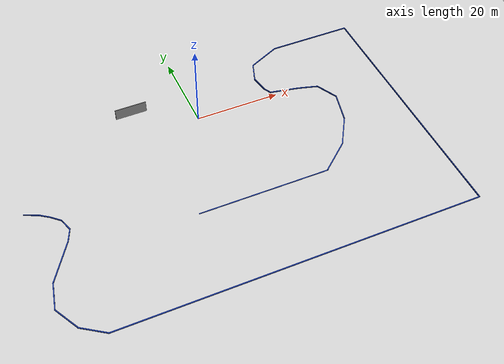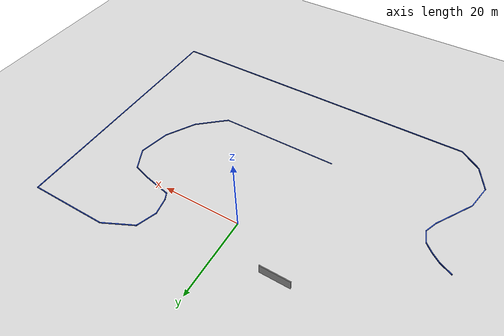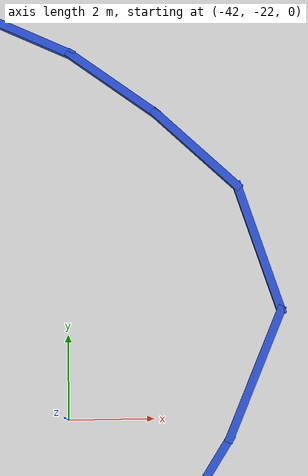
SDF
<sdf version="1.4">
 <world name="default">
  <light name="sun" type="directional">
   <pose>0 0 10 0 -0 0</pose>
   <diffuse>0.8 0.8 0.8 1</diffuse>
   <specular>0.2 0.2 0.2 1</specular>
   <attenuation>
    <range>1000</range>
    <constant>0.9</constant>
    <linear>0.01</linear>
    <quadratic>0.001</quadratic>
   </attenuation>
   <direction>-0.5 0.1 -0.9</direction>
  </light>
  <model name="ground_plane">
   <static>1</static>
   <link name="link">
    <collision name="collision">
     <geometry><plane><normal>0 0 1</normal><size>100 100</size></plane></geometry>
     <surface><friction><ode><mu>100</mu><mu2>50</mu2></ode></friction></surface>
    </collision>
    <visual name="visual">
     <cast_shadows>0</cast_shadows>
     <geometry><plane><normal>0 0 1</normal><size>100 100</size></plane></geometry>
     <material>
      <script><uri>file://media/materials/scripts/gazebo.material</uri><name>Gazebo/Grey</name></script>
     </material>
    </visual>
    <velocity_decay><linear>0</linear><angular>0</angular></velocity_decay>
   </link>
  </model>
  <physics type="ode">
   <max_step_size>0.001</max_step_size>
   <real_time_factor>1</real_time_factor>
   <real_time_update_rate>1000</real_time_update_rate>
   <gravity>0 0 -9.8</gravity>
  </physics>
  <scene><ambient>0.4 0.4 0.4 1</ambient><background>0.7 0.7 0.7 1</background><shadows>1</shadows></scene>
  <model name="grey_wall">
   <static>1</static>
   <link name="link">
    <pose>0 0 1.4 0 -0 0</pose>
    <collision name="collision"><geometry><box><size>7.5 0.2 2.8</size></box></geometry></collision>
    <visual name="visual">
     <cast_shadows>0</cast_shadows>
     <geometry><box><size>7.5 0.2 2.8</size></box></geometry>
     <material>
      <script>
       <uri>model://grey_wall/materials/scripts</uri>
       <uri>model://grey_wall/materials/textures</uri>
       <name>vrc/grey_wall</name>
      </script>
     </material>
    </visual>
    <velocity_decay><linear>0</linear><angular>0</angular></velocity_decay>
   </link>
   <pose>-13.9123 7.71769 0 0 -0 0</pose>
  </model>
  <spherical_coordinates>
   <surface_model>EARTH_WGS84</surface_model>
   <latitude_deg>0</latitude_deg>
   <longitude_deg>0</longitude_deg>
   <elevation>0</elevation>
   <heading_deg>0</heading_deg>
  </spherical_coordinates>
  <model name="BuildingDefaultName">
   <static>1</static>
   <link name="__default__"><velocity_decay><linear>0</linear><angular>0</angular></velocity_decay></link>
  </model>
  <model name="Line">
   <pose>2.51015 -18.6664 0 0 -0 0</pose>
   <link name="Wall_14">
    <collision name="Wall_14_Collision">
     <geometry><box><size>30.9738 0.2 0.1</size></box></geometry>
     <pose>0 0 0.05 0 -0 0</pose>
    </collision>
    <visual name="Wall_14_Visual">
     <pose>0 0 0.05 0 -0 0</pose>
     <geometry><box><size>30.9738 0.2 0.1</size></box></geometry>
     <material>
      <script><uri>file://media/materials/scripts/gazebo.material</uri><name>Gazebo/Blue</name></script>
     </material>
    </visual>
    <velocity_decay><linear>0</linear><angular>0</angular></velocity_decay>
    <pose>2.35 -8.066 0 0 -0 0</pose>
   </link>
   <link name="Wall_16">
    <collision name="Wall_16_Collision">
     <geometry><box><size>9.05237 0.2 0.2</size></box></geometry>
     <pose>0 0 0.1 0 -0 0</pose>
    </collision>
    <visual name="Wall_16_Visual">
     <pose>0 0 0.1 0 -0 0</pose>
     <geometry><box><size>9.05237 0.2 0.2</size></box></geometry>
     <material>
      <script><uri>file://media/materials/scripts/gazebo.material</uri><name>Gazebo/Blue</name></script>
     </material>
    </visual>
    <velocity_decay><linear>0</linear><angular>0</angular></velocity_decay>
    <pose>21.074 -5.1125 0 0 -0 0.707119</pose>
   </link>
   <link name="Wall_17">
    <collision name="Wall_17_Collision">
     <geometry><box><size>8.40503 0.2 0.2</size></box></geometry>
     <pose>0 0 0.1 0 -0 0</pose>
    </collision>
    <visual name="Wall_17_Visual">
     <pose>0 0 0.1 0 -0 0</pose>
     <geometry><box><size>8.40503 0.2 0.2</size></box></geometry>
     <material>
      <script><uri>file://media/materials/scripts/gazebo.material</uri><name>Gazebo/Blue</name></script>
     </material>
    </visual>
    <velocity_decay><linear>0</linear><angular>0</angular></velocity_decay>
    <pose>26.5495 1.281 0 0 -0 1.03043</pose>
   </link>
   <link name="Wall_18">
    <collision name="Wall_18_Collision">
     <geometry><box><size>7.85807 0.2 0.2</size></box></geometry>
     <pose>0 0 0.1 0 -0 0</pose>
    </collision>
    <visual name="Wall_18_Visual">
     <pose>0 0 0.1 0 -0 0</pose>
     <geometry><box><size>7.85807 0.2 0.2</size></box></geometry>
     <material>
      <script><uri>file://media/materials/scripts/gazebo.material</uri><name>Gazebo/Blue</name></script>
     </material>
    </visual>
    <velocity_decay><linear>0</linear><angular>0</angular></velocity_decay>
    <pose>29.5166 8.53101 0 0 -0 1.34519</pose>
   </link>
   <link name="Wall_19">
    <collision name="Wall_19_Collision">
     <geometry><box><size>5.7543 0.2 0.2</size></box></geometry>
     <pose>0 0 0.1 0 -0 0</pose>
    </collision>
    <visual name="Wall_19_Visual">
     <pose>0 0 0.1 0 -0 0</pose>
     <geometry><box><size>5.7543 0.2 0.2</size></box></geometry>
     <material>
      <script><uri>file://media/materials/scripts/gazebo.material</uri><name>Gazebo/Blue</name></script>
     </material>
    </visual>
    <velocity_decay><linear>0</linear><angular>0</angular></velocity_decay>
    <pose>29.1189 14.7408 0 0 -0 2.03937</pose>
   </link>
   <link name="Wall_20">
    <collision name="Wall_20_Collision">
     <geometry><box><size>4.8247 0.2 0.2</size></box></geometry>
     <pose>0 0 0.1 0 -0 0</pose>
    </collision>
    <visual name="Wall_20_Visual">
     <pose>0 0 0.1 0 -0 0</pose>
     <geometry><box><size>4.8247 0.2 0.2</size></box></geometry>
     <material>
      <script><uri>file://media/materials/scripts/gazebo.material</uri><name>Gazebo/Blue</name></script>
     </material>
    </visual>
    <velocity_decay><linear>0</linear><angular>0</angular></velocity_decay>
    <pose>25.6449 17.8661 0 0 -0 2.85781</pose>
   </link>
   <link name="Wall_21">
    <collision name="Wall_21_Collision">
     <geometry><box><size>7.17792 0.2 0.2</size></box></geometry>
     <pose>0 0 0.1 0 -0 0</pose>
    </collision>
    <visual name="Wall_21_Visual">
     <pose>0 0 0.1 0 -0 0</pose>
     <geometry><box><size>7.17792 0.2 0.2</size></box></geometry>
     <material>
      <script><uri>file://media/materials/scripts/gazebo.material</uri><name>Gazebo/Blue</name></script>
     </material>
    </visual>
    <velocity_decay><linear>0</linear><angular>0</angular></velocity_decay>
    <pose>20.0094 19.2251 0 0 -0 2.9362</pose>
   </link>
   <link name="Wall_22">
    <collision name="Wall_22_Collision">
     <geometry><box><size>2.10939 0.2 0.2</size></box></geometry>
     <pose>0 0 0.1 0 -0 0</pose>
    </collision>
    <visual name="Wall_22_Visual">
     <pose>0 0 0.1 0 -0 0</pose>
     <geometry><box><size>2.10939 0.2 0.2</size></box></geometry>
     <material>
      <script><uri>file://media/materials/scripts/gazebo.material</uri><name>Gazebo/Blue</name></script>
     </material>
    </visual>
    <velocity_decay><linear>0</linear><angular>0</angular></velocity_decay>
    <pose>16.1668 20.7906 0 0 -0 2.03444</pose>
   </link>
   <link name="Wall_23">
    <collision name="Wall_23_Collision">
     <geometry><box><size>4.27227 0.2 0.2</size></box></geometry>
     <pose>0 0 0.1 0 -0 0</pose>
    </collision>
    <visual name="Wall_23_Visual">
     <pose>0 0 0.1 0 -0 0</pose>
     <geometry><box><size>4.27227 0.2 0.2</size></box></geometry>
     <material>
      <script><uri>file://media/materials/scripts/gazebo.material</uri><name>Gazebo/Blue</name></script>
     </material>
    </visual>
    <velocity_decay><linear>0</linear><angular>0</angular></velocity_decay>
    <pose>15.3807 23.6487 0 0 -0 1.7481</pose>
   </link>
   <link name="Wall_24">
    <collision name="Wall_24_Collision">
     <geometry><box><size>5.31054 0.2 0.2</size></box></geometry>
     <pose>0 0 0.1 0 -0 0</pose>
    </collision>
    <visual name="Wall_24_Visual">
     <pose>0 0 0.1 0 -0 0</pose>
     <geometry><box><size>5.31054 0.2 0.2</size></box></geometry>
     <material>
      <script><uri>file://media/materials/scripts/gazebo.material</uri><name>Gazebo/Blue</name></script>
     </material>
    </visual>
    <velocity_decay><linear>0</linear><angular>0</angular></velocity_decay>
    <pose>15.8776 28.0605 0 0 -0 1.22918</pose>
   </link>
   <link name="Wall_25">
    <collision name="Wall_25_Collision">
     <geometry><box><size>8.55945 0.2 0.2</size></box></geometry>
     <pose>0 0 0.1 0 -0 0</pose>
    </collision>
    <visual name="Wall_25_Visual">
     <pose>0 0 0.1 0 -0 0</pose>
     <geometry><box><size>8.55945 0.2 0.2</size></box></geometry>
     <material>
      <script><uri>file://media/materials/scripts/gazebo.material</uri><name>Gazebo/Blue</name></script>
     </material>
    </visual>
    <velocity_decay><linear>0</linear><angular>0</angular></velocity_decay>
    <pose>20.5118 32.2558 0 0 -0 0.441939</pose>
   </link>
   <link name="Wall_26">
    <collision name="Wall_26_Collision">
     <geometry><box><size>20.0382 0.2 0.2</size></box></geometry>
     <pose>0 0 0.1 0 -0 0</pose>
    </collision>
    <visual name="Wall_26_Visual">
     <pose>0 0 0.1 0 -0 0</pose>
     <geometry><box><size>20.0382 0.2 0.2</size></box></geometry>
     <material>
      <script><uri>file://media/materials/scripts/gazebo.material</uri><name>Gazebo/Blue</name></script>
     </material>
    </visual>
    <velocity_decay><linear>0</linear><angular>0</angular></velocity_decay>
    <pose>34.2091 34.0434 0 0 -0 0</pose>
   </link>
   <link name="Wall_27">
    <collision name="Wall_27_Collision">
     <geometry><box><size>62.7089 0.2 0.2</size></box></geometry>
     <pose>0 0 0.1 0 -0 0</pose>
    </collision>
    <visual name="Wall_27_Visual">
     <pose>0 0 0.1 0 -0 0</pose>
     <geometry><box><size>62.7089 0.2 0.2</size></box></geometry>
     <material>
      <script><uri>file://media/materials/scripts/gazebo.material</uri><name>Gazebo/Blue</name></script>
     </material>
    </visual>
    <velocity_decay><linear>0</linear><angular>0</angular></velocity_decay>
    <pose>44.1281 2.78896 0 0 0 -1.5708</pose>
   </link>
   <link name="Wall_28">
    <collision name="Wall_28_Collision">
     <geometry><box><size>84.2314 0.2 0.2</size></box></geometry>
     <pose>0 0 0.1 0 -0 0</pose>
    </collision>
    <visual name="Wall_28_Visual">
     <pose>0 0 0.1 0 -0 0</pose>
     <geometry><box><size>84.2314 0.2 0.2</size></box></geometry>
     <material>
      <script><uri>file://media/materials/scripts/gazebo.material</uri><name>Gazebo/Blue</name></script>
     </material>
    </visual>
    <velocity_decay><linear>0</linear><angular>0</angular></velocity_decay>
    <pose>2.11242 -28.4655 0 0 -0 3.14159</pose>
   </link>
   <link name="Wall_29">
    <collision name="Wall_29_Collision">
     <geometry><box><size>6.37887 0.2 0.2</size></box></geometry>
     <pose>0 0 0.1 0 -0 0</pose>
    </collision>
    <visual name="Wall_29_Visual">
     <pose>0 0 0.1 0 -0 0</pose>
     <geometry><box><size>6.37887 0.2 0.2</size></box></geometry>
     <material>
      <script><uri>file://media/materials/scripts/gazebo.material</uri><name>Gazebo/Blue</name></script>
     </material>
    </visual>
    <velocity_decay><linear>0</linear><angular>0</angular></velocity_decay>
    <pose>-42.4299 -26.6875 0 0 -0 2.52839</pose>
   </link>
   <link name="Wall_30">
    <collision name="Wall_30_Collision">
     <geometry><box><size>6.72891 0.2 0.2</size></box></geometry>
     <pose>0 0 0.1 0 -0 0</pose>
    </collision>
    <visual name="Wall_30_Visual">
     <pose>0 0 0.1 0 -0 0</pose>
     <geometry><box><size>6.72891 0.2 0.2</size></box></geometry>
     <material>
      <script><uri>file://media/materials/scripts/gazebo.material</uri><name>Gazebo/Blue</name></script>
     </material>
    </visual>
    <velocity_decay><linear>0</linear><angular>0</angular></velocity_decay>
    <pose>-46.4536 -22.0087 0 0 -0 2.04726</pose>
   </link>
   <link name="Wall_31">
    <collision name="Wall_31_Collision">
     <geometry><box><size>6.64626 0.2 0.2</size></box></geometry>
     <pose>0 0 0.1 0 -0 0</pose>
    </collision>
    <visual name="Wall_31_Visual">
     <pose>0 0 0.1 0 -0 0</pose>
     <geometry><box><size>6.64626 0.2 0.2</size></box></geometry>
     <material>
      <script><uri>file://media/materials/scripts/gazebo.material</uri><name>Gazebo/Blue</name></script>
     </material>
    </visual>
    <velocity_decay><linear>0</linear><angular>0</angular></velocity_decay>
    <pose>-47.2387 -15.9644 0 0 -0 1.34801</pose>
   </link>
   <link name="Wall_32">
    <collision name="Wall_32_Collision">
     <geometry><box><size>10.8855 0.2 0.2</size></box></geometry>
     <pose>0 0 0.1 0 -0 0</pose>
    </collision>
    <visual name="Wall_32_Visual">
     <pose>0 0 0.1 0 -0 0</pose>
     <geometry><box><size>10.8855 0.2 0.2</size></box></geometry>
     <material>
      <script><uri>file://media/materials/scripts/gazebo.material</uri><name>Gazebo/Blue</name></script>
     </material>
    </visual>
    <velocity_decay><linear>0</linear><angular>0</angular></velocity_decay>
    <pose>-43.6374 -8.32672 0 0 -0 0.999459</pose>
   </link>
   <link name="Wall_33">
    <collision name="Wall_33_Collision">
     <geometry><box><size>3.4597 0.2 0.2</size></box></geometry>
     <pose>0 0 0.1 0 -0 0</pose>
    </collision>
    <visual name="Wall_33_Visual">
     <pose>0 0 0.1 0 -0 0</pose>
     <geometry><box><size>3.4597 0.2 0.2</size></box></geometry>
     <material>
      <script><uri>file://media/materials/scripts/gazebo.material</uri><name>Gazebo/Blue</name></script>
     </material>
    </visual>
    <velocity_decay><linear>0</linear><angular>0</angular></velocity_decay>
    <pose>-40.1063 -2.33444 0 0 -0 1.1659</pose>
   </link>
   <link name="Wall_34">
    <collision name="Wall_34_Collision">
     <geometry><box><size>3.34711 0.2 0.2</size></box></geometry>
     <pose>0 0 0.1 0 -0 0</pose>
    </collision>
    <visual name="Wall_34_Visual">
     <pose>0 0 0.1 0 -0 0</pose>
     <geometry><box><size>3.34711 0.2 0.2</size></box></geometry>
     <material>
      <script><uri>file://media/materials/scripts/gazebo.material</uri><name>Gazebo/Blue</name></script>
     </material>
    </visual>
    <velocity_decay><linear>0</linear><angular>0</angular></velocity_decay>
    <pose>-39.9458 0.661698 0 0 -0 1.8818</pose>
   </link>
   <link name="Wall_35">
    <collision name="Wall_35_Collision">
     <geometry><box><size>2.84932 0.2 0.2</size></box></geometry>
     <pose>0 0 0.1 0 -0 0</pose>
    </collision>
    <visual name="Wall_35_Visual">
     <pose>0 0 0.1 0 -0 0</pose>
     <geometry><box><size>2.84932 0.2 0.2</size></box></geometry>
     <material>
      <script><uri>file://media/materials/scripts/gazebo.material</uri><name>Gazebo/Blue</name></script>
     </material>
    </visual>
    <velocity_decay><linear>0</linear><angular>0</angular></velocity_decay>
    <pose>-41.3903 3.06931 0 0 -0 2.38476</pose>
   </link>
   <link name="Wall_36">
    <collision name="Wall_36_Collision">
     <geometry><box><size>2.72541 0.2 0.2</size></box></geometry>
     <pose>0 0 0.1 0 -0 0</pose>
    </collision>
    <visual name="Wall_36_Visual">
     <pose>0 0 0.1 0 -0 0</pose>
     <geometry><box><size>2.72541 0.2 0.2</size></box></geometry>
     <material>
      <script><uri>file://media/materials/scripts/gazebo.material</uri><name>Gazebo/Blue</name></script>
     </material>
    </visual>
    <velocity_decay><linear>0</linear><angular>0</angular></velocity_decay>
    <pose>-43.3699 4.72789 0 0 -0 2.50657</pose>
   </link>
   <link name="Wall_37">
    <collision name="Wall_37_Collision">
     <geometry><box><size>3.50332 0.2 0.2</size></box></geometry>
     <pose>0 0 0.1 0 -0 0</pose>
    </collision>
    <visual name="Wall_37_Visual">
     <pose>0 0 0.1 0 -0 0</pose>
     <geometry><box><size>3.50332 0.2 0.2</size></box></geometry>
     <material>
      <script><uri>file://media/materials/scripts/gazebo.material</uri><name>Gazebo/Blue</name></script>
     </material>
    </visual>
    <velocity_decay><linear>0</linear><angular>0</angular></velocity_decay>
    <pose>-45.8845 6.17246 0 0 -0 2.70692</pose>
   </link>
   <static>1</static>
  </model>
  <model name="BuildingDefaultName">
   <static>1</static>
   <link name="__default__"><velocity_decay><linear>0</linear><angular>0</angular></velocity_decay></link>
  </model>
  <model name="BuildingDefaultName">
   <static>1</static>
   <link name="__default__"><velocity_decay><linear>0</linear><angular>0</angular></velocity_decay></link>
  </model>
 </world>
</sdf>
